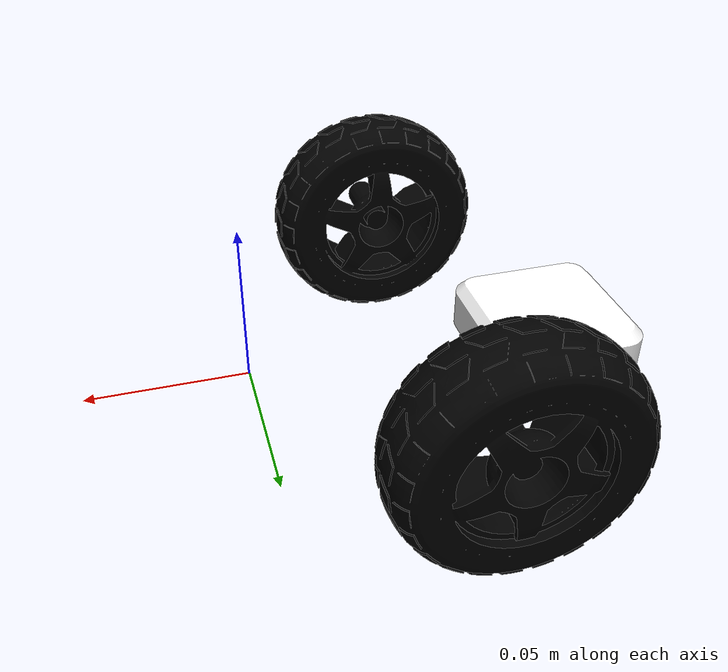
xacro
<?xml version="1.0"?>
<robot xmlns:xacro="http://www.ros.org/wiki/xacro" >

    <xacro:include filename="inertial_macros.xacro"/>

    <material name="white">
        <color rgba="1 1 1 1" />
    </material>

    <material name="orange">
        <color rgba="1 0.3 0.1 1"/>
    </material>

    <material name="blue">
        <color rgba="0.2 0.2 1 1"/>
    </material>

    <material name="black">
        <color rgba="0 0 0 1"/>
    </material>

    <!-- BASE LINK -->

    <link name="base_link">

    </link>

    <!-- CHASSIS LINK -->

    <joint name="chassis_joint" type="fixed">
        <parent link="base_link"/>
        <child link="chassis"/>
        <origin xyz="-0.1 0 0"/>
    </joint>

    <link name="chassis">
        <visual>
            <origin
            xyz="0 0 0"
            rpy="0 0 0" />

            <geometry>
        	<mesh
          	  filename="package://my_bot/meshes/base_link.STL" />
            </geometry>
            <material name="white"/>
        </visual>
    <collision>
      <origin
        xyz="0 0 0"
        rpy="0 0 0" />
      <geometry>
        <mesh
          filename="package://my_bot/meshes/base_link.STL" />
      </geometry>
    </collision>
        <xacro:inertial_box mass="0.40974" x="0.3" y="0.3" z="0.15">
            <origin xyz="0.0023405 -0.00043339 0.022777" rpy="0 0 0"/>
        </xacro:inertial_box>
    </link>

    <gazebo reference="chassis">
        <material>Gazebo/Yellow</material>
    </gazebo>

    <!-- LEFT WHEEL LINK -->

    <joint name="left_wheel_joint" type="continuous">
        <parent link="base_link"/>
        <child link="left_wheel"/>
    	<origin
      	xyz="-0.0588 0.0667 0.014"
      	rpy="-1.5708 0 0" />
        <axis xyz="0 0 1"/>
    </joint>

    <link name="left_wheel">
    <visual>
      <origin
        xyz="0 0 0"
        rpy="0 0 0" />
      <geometry>
        <mesh
          filename="package://my_bot/meshes/left_wheel.STL" />
      </geometry>
      <material
        name="black">
      </material>
    </visual>
    <collision>
      <origin
        xyz="0 0 0"
        rpy="0 0 0" />
      <geometry>
        <mesh
          filename="package://my_bot/meshes/left_wheel.STL" />
      </geometry>
    </collision>
        <xacro:inertial_cylinder mass="0.1" length="0.04" radius="0.05">
            <origin xyz="0 0 0" rpy="0 0 0"/>
        </xacro:inertial_cylinder>
    </link>

    <gazebo reference="left_wheel">
        <material>Gazebo/Black</material>
    </gazebo>

    <!-- RIGHT WHEEL LINK -->

    <joint name="right_wheel_joint" type="continuous">
        <parent link="base_link"/>
        <child link="right_wheel"/>
        <origin xyz="-0.058826 -0.0667 0.014" rpy="${pi/2} 0 0" />
        <axis xyz="0 0 -1"/>
    </joint>

    <link name="right_wheel">
    <visual>
      <origin
        xyz="0 0 0"
        rpy="0 0 0" />
      <geometry>
        <mesh
          filename="package://my_bot/meshes/right_wheel.STL" />
      </geometry>
      <material
        name="black">
      </material>
    </visual>
    <collision>
      <origin
        xyz="0 0 0"
        rpy="0 0 0" />
      <geometry>
        <mesh
          filename="package://my_bot/meshes/right_wheel.STL" />
      </geometry>
    </collision>
        <xacro:inertial_cylinder mass="0.031032" length="0.04" radius="0.05">
            <origin xyz="0 0 0" rpy="0 0 0"/>
        </xacro:inertial_cylinder>
    </link>

    <gazebo reference="right_wheel">
        <material>Gazebo/Blue</material>
    </gazebo>

</robot>
